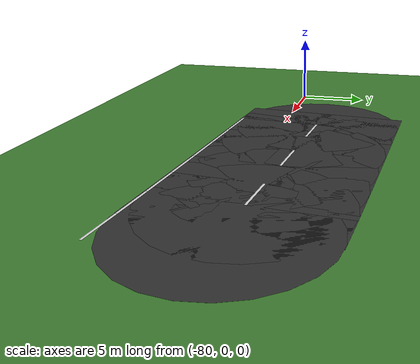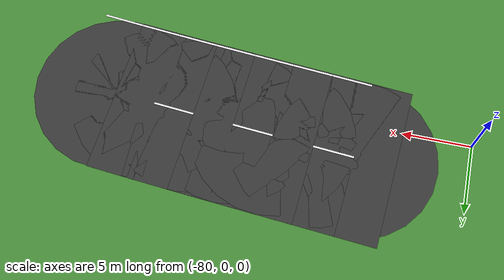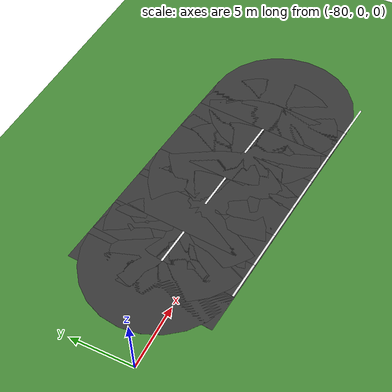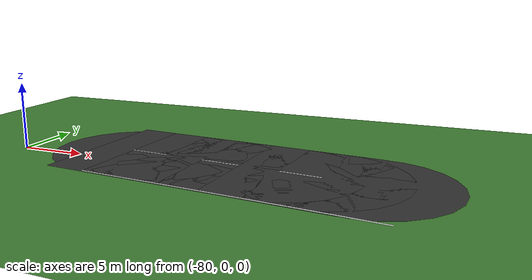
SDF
<sdf version="1.6">
 <world name="sem_silesia_ring_2026">
  <model name="ground_plane">
   <static>true</static>
   <link name="link">
    <collision name="collision">
     <geometry><plane><normal>0 0 1</normal><size>1200 1200</size></plane></geometry>
     <surface><friction><ode><mu>0.6</mu><mu2>0.6</mu2></ode></friction></surface>
    </collision>
    <visual name="visual">
     <geometry><plane><normal>0 0 1</normal><size>1200 1200</size></plane></geometry>
     <material><ambient>0.28 0.55 0.22 1</ambient><diffuse>0.28 0.55 0.22 1</diffuse></material>
    </visual>
   </link>
  </model>
  <model name="road_s415">
   <static>true</static>
   <pose>-73.4054 2.6078 0.0030 0 0 -0.0771</pose>
   <link name="link">
    <visual name="v">
     <geometry><box><size>3.0025 12.0000 0.0060</size></box></geometry>
     <material><ambient>0.22 0.22 0.22 1</ambient><diffuse>0.22 0.22 0.22 1</diffuse></material>
    </visual>
    <collision name="c">
     <geometry><box><size>3.0025 12.0000 0.0060</size></box></geometry>
     <surface><friction><ode><mu>0.9</mu><mu2>0.9</mu2></ode></friction></surface>
    </collision>
   </link>
  </model>
  <model name="road_s416">
   <static>true</static>
   <pose>-70.4115 2.3800 0.0030 0 0 -0.0749</pose>
   <link name="link">
    <visual name="v">
     <geometry><box><size>3.0025 12.0000 0.0060</size></box></geometry>
     <material><ambient>0.22 0.22 0.22 1</ambient><diffuse>0.22 0.22 0.22 1</diffuse></material>
    </visual>
    <collision name="c">
     <geometry><box><size>3.0025 12.0000 0.0060</size></box></geometry>
     <surface><friction><ode><mu>0.9</mu><mu2>0.9</mu2></ode></friction></surface>
    </collision>
   </link>
  </model>
  <model name="road_jnt416">
   <static>true</static>
   <pose>-71.9086 2.4923 0.0030 0 0 0</pose>
   <link name="link">
    <visual name="v">
     <geometry><cylinder><radius>6.0000</radius><length>0.0060</length></cylinder></geometry>
     <material><ambient>0.22 0.22 0.22 1</ambient><diffuse>0.22 0.22 0.22 1</diffuse></material>
    </visual>
    <collision name="c">
     <geometry><cylinder><radius>6.0000</radius><length>0.0060</length></cylinder></geometry>
     <surface><friction><ode><mu>0.9</mu><mu2>0.9</mu2></ode></friction></surface>
    </collision>
   </link>
  </model>
  <model name="wl_R_s416">
   <static>true</static>
   <pose>-70.8490 -3.4536 0.0070 0 0 -0.0749</pose>
   <link name="link">
    <visual name="v">
     <geometry><box><size>3.0025 0.1500 0.0080</size></box></geometry>
     <material><ambient>0.95 0.95 0.95 1</ambient><diffuse>0.95 0.95 0.95 1</diffuse></material>
    </visual>
   </link>
  </model>
  <model name="cd_s416">
   <static>true</static>
   <pose>-70.4115 2.3800 0.0070 0 0 -0.0749</pose>
   <link name="link">
    <visual name="v">
     <geometry><box><size>3.0025 0.1500 0.0080</size></box></geometry>
     <material><ambient>0.95 0.95 0.95 1</ambient><diffuse>0.95 0.95 0.95 1</diffuse></material>
    </visual>
   </link>
  </model>
  <model name="road_s417">
   <static>true</static>
   <pose>-67.4173 2.1563 0.0030 0 0 -0.0743</pose>
   <link name="link">
    <visual name="v">
     <geometry><box><size>3.0025 12.0000 0.0060</size></box></geometry>
     <material><ambient>0.22 0.22 0.22 1</ambient><diffuse>0.22 0.22 0.22 1</diffuse></material>
    </visual>
    <collision name="c">
     <geometry><box><size>3.0025 12.0000 0.0060</size></box></geometry>
     <surface><friction><ode><mu>0.9</mu><mu2>0.9</mu2></ode></friction></surface>
    </collision>
   </link>
  </model>
  <model name="road_jnt417">
   <static>true</static>
   <pose>-68.9144 2.2677 0.0030 0 0 0</pose>
   <link name="link">
    <visual name="v">
     <geometry><cylinder><radius>6.0000</radius><length>0.0060</length></cylinder></geometry>
     <material><ambient>0.22 0.22 0.22 1</ambient><diffuse>0.22 0.22 0.22 1</diffuse></material>
    </visual>
    <collision name="c">
     <geometry><cylinder><radius>6.0000</radius><length>0.0060</length></cylinder></geometry>
     <surface><friction><ode><mu>0.9</mu><mu2>0.9</mu2></ode></friction></surface>
    </collision>
   </link>
  </model>
  <model name="wl_R_s417">
   <static>true</static>
   <pose>-67.8513 -3.6775 0.0070 0 0 -0.0743</pose>
   <link name="link">
    <visual name="v">
     <geometry><box><size>3.0025 0.1500 0.0080</size></box></geometry>
     <material><ambient>0.95 0.95 0.95 1</ambient><diffuse>0.95 0.95 0.95 1</diffuse></material>
    </visual>
   </link>
  </model>
  <model name="road_s418">
   <static>true</static>
   <pose>-64.4231 1.9320 0.0030 0 0 -0.0753</pose>
   <link name="link">
    <visual name="v">
     <geometry><box><size>3.0025 12.0000 0.0060</size></box></geometry>
     <material><ambient>0.22 0.22 0.22 1</ambient><diffuse>0.22 0.22 0.22 1</diffuse></material>
    </visual>
    <collision name="c">
     <geometry><box><size>3.0025 12.0000 0.0060</size></box></geometry>
     <surface><friction><ode><mu>0.9</mu><mu2>0.9</mu2></ode></friction></surface>
    </collision>
   </link>
  </model>
  <model name="road_jnt418">
   <static>true</static>
   <pose>-65.9202 2.0449 0.0030 0 0 0</pose>
   <link name="link">
    <visual name="v">
     <geometry><cylinder><radius>6.0000</radius><length>0.0060</length></cylinder></geometry>
     <material><ambient>0.22 0.22 0.22 1</ambient><diffuse>0.22 0.22 0.22 1</diffuse></material>
    </visual>
    <collision name="c">
     <geometry><cylinder><radius>6.0000</radius><length>0.0060</length></cylinder></geometry>
     <surface><friction><ode><mu>0.9</mu><mu2>0.9</mu2></ode></friction></surface>
    </collision>
   </link>
  </model>
  <model name="wl_R_s418">
   <static>true</static>
   <pose>-64.8631 -3.9014 0.0070 0 0 -0.0753</pose>
   <link name="link">
    <visual name="v">
     <geometry><box><size>3.0025 0.1500 0.0080</size></box></geometry>
     <material><ambient>0.95 0.95 0.95 1</ambient><diffuse>0.95 0.95 0.95 1</diffuse></material>
    </visual>
   </link>
  </model>
  <model name="cd_s418">
   <static>true</static>
   <pose>-64.4231 1.9320 0.0070 0 0 -0.0753</pose>
   <link name="link">
    <visual name="v">
     <geometry><box><size>3.0025 0.1500 0.0080</size></box></geometry>
     <material><ambient>0.95 0.95 0.95 1</ambient><diffuse>0.95 0.95 0.95 1</diffuse></material>
    </visual>
   </link>
  </model>
  <model name="road_s419">
   <static>true</static>
   <pose>-61.4294 1.7023 0.0030 0 0 -0.0779</pose>
   <link name="link">
    <visual name="v">
     <geometry><box><size>3.0025 12.0000 0.0060</size></box></geometry>
     <material><ambient>0.22 0.22 0.22 1</ambient><diffuse>0.22 0.22 0.22 1</diffuse></material>
    </visual>
    <collision name="c">
     <geometry><box><size>3.0025 12.0000 0.0060</size></box></geometry>
     <surface><friction><ode><mu>0.9</mu><mu2>0.9</mu2></ode></friction></surface>
    </collision>
   </link>
  </model>
  <model name="road_jnt419">
   <static>true</static>
   <pose>-62.9261 1.8191 0.0030 0 0 0</pose>
   <link name="link">
    <visual name="v">
     <geometry><cylinder><radius>6.0000</radius><length>0.0060</length></cylinder></geometry>
     <material><ambient>0.22 0.22 0.22 1</ambient><diffuse>0.22 0.22 0.22 1</diffuse></material>
    </visual>
    <collision name="c">
     <geometry><cylinder><radius>6.0000</radius><length>0.0060</length></cylinder></geometry>
     <surface><friction><ode><mu>0.9</mu><mu2>0.9</mu2></ode></friction></surface>
    </collision>
   </link>
  </model>
  <model name="wl_R_s419">
   <static>true</static>
   <pose>-61.8845 -4.1299 0.0070 0 0 -0.0779</pose>
   <link name="link">
    <visual name="v">
     <geometry><box><size>3.0025 0.1500 0.0080</size></box></geometry>
     <material><ambient>0.95 0.95 0.95 1</ambient><diffuse>0.95 0.95 0.95 1</diffuse></material>
    </visual>
   </link>
  </model>
  <model name="road_s420">
   <static>true</static>
   <pose>-58.4365 1.4625 0.0030 0 0 -0.0820</pose>
   <link name="link">
    <visual name="v">
     <geometry><box><size>3.0025 12.0000 0.0060</size></box></geometry>
     <material><ambient>0.22 0.22 0.22 1</ambient><diffuse>0.22 0.22 0.22 1</diffuse></material>
    </visual>
    <collision name="c">
     <geometry><box><size>3.0025 12.0000 0.0060</size></box></geometry>
     <surface><friction><ode><mu>0.9</mu><mu2>0.9</mu2></ode></friction></surface>
    </collision>
   </link>
  </model>
  <model name="road_jnt420">
   <static>true</static>
   <pose>-59.9327 1.5856 0.0030 0 0 0</pose>
   <link name="link">
    <visual name="v">
     <geometry><cylinder><radius>6.0000</radius><length>0.0060</length></cylinder></geometry>
     <material><ambient>0.22 0.22 0.22 1</ambient><diffuse>0.22 0.22 0.22 1</diffuse></material>
    </visual>
    <collision name="c">
     <geometry><cylinder><radius>6.0000</radius><length>0.0060</length></cylinder></geometry>
     <surface><friction><ode><mu>0.9</mu><mu2>0.9</mu2></ode></friction></surface>
    </collision>
   </link>
  </model>
  <model name="wl_R_s420">
   <static>true</static>
   <pose>-58.9159 -4.3678 0.0070 0 0 -0.0820</pose>
   <link name="link">
    <visual name="v">
     <geometry><box><size>3.0025 0.1500 0.0080</size></box></geometry>
     <material><ambient>0.95 0.95 0.95 1</ambient><diffuse>0.95 0.95 0.95 1</diffuse></material>
    </visual>
   </link>
  </model>
  <model name="cd_s420">
   <static>true</static>
   <pose>-58.4365 1.4625 0.0070 0 0 -0.0820</pose>
   <link name="link">
    <visual name="v">
     <geometry><box><size>3.0025 0.1500 0.0080</size></box></geometry>
     <material><ambient>0.95 0.95 0.95 1</ambient><diffuse>0.95 0.95 0.95 1</diffuse></material>
    </visual>
   </link>
  </model>
  <model name="road_s421">
   <static>true</static>
   <pose>-55.4448 1.2079 0.0030 0 0 -0.0878</pose>
   <link name="link">
    <visual name="v">
     <geometry><box><size>3.0025 12.0000 0.0060</size></box></geometry>
     <material><ambient>0.22 0.22 0.22 1</ambient><diffuse>0.22 0.22 0.22 1</diffuse></material>
    </visual>
    <collision name="c">
     <geometry><box><size>3.0025 12.0000 0.0060</size></box></geometry>
     <surface><friction><ode><mu>0.9</mu><mu2>0.9</mu2></ode></friction></surface>
    </collision>
   </link>
  </model>
  <model name="road_jnt421">
   <static>true</static>
   <pose>-56.9403 1.3395 0.0030 0 0 0</pose>
   <link name="link">
    <visual name="v">
     <geometry><cylinder><radius>6.0000</radius><length>0.0060</length></cylinder></geometry>
     <material><ambient>0.22 0.22 0.22 1</ambient><diffuse>0.22 0.22 0.22 1</diffuse></material>
    </visual>
    <collision name="c">
     <geometry><cylinder><radius>6.0000</radius><length>0.0060</length></cylinder></geometry>
     <surface><friction><ode><mu>0.9</mu><mu2>0.9</mu2></ode></friction></surface>
    </collision>
   </link>
  </model>
  <model name="wl_R_s421">
   <static>true</static>
   <pose>-55.9576 -4.6196 0.0070 0 0 -0.0878</pose>
   <link name="link">
    <visual name="v">
     <geometry><box><size>3.0025 0.1500 0.0080</size></box></geometry>
     <material><ambient>0.95 0.95 0.95 1</ambient><diffuse>0.95 0.95 0.95 1</diffuse></material>
    </visual>
   </link>
  </model>
  <model name="road_jnt422">
   <static>true</static>
   <pose>-53.9493 1.0763 0.0030 0 0 0</pose>
   <link name="link">
    <visual name="v">
     <geometry><cylinder><radius>6.0000</radius><length>0.0060</length></cylinder></geometry>
     <material><ambient>0.22 0.22 0.22 1</ambient><diffuse>0.22 0.22 0.22 1</diffuse></material>
    </visual>
    <collision name="c">
     <geometry><cylinder><radius>6.0000</radius><length>0.0060</length></cylinder></geometry>
     <surface><friction><ode><mu>0.9</mu><mu2>0.9</mu2></ode></friction></surface>
    </collision>
   </link>
  </model>
  <model name="wl_R_s422">
   <static>true</static>
   <pose>-53.0074 -4.8894 0.0070 0 0 -0.0946</pose>
   <link name="link">
    <visual name="v">
     <geometry><box><size>3.0025 0.1500 0.0080</size></box></geometry>
     <material><ambient>0.95 0.95 0.95 1</ambient><diffuse>0.95 0.95 0.95 1</diffuse></material>
    </visual>
   </link>
  </model>
 </world>
</sdf>
